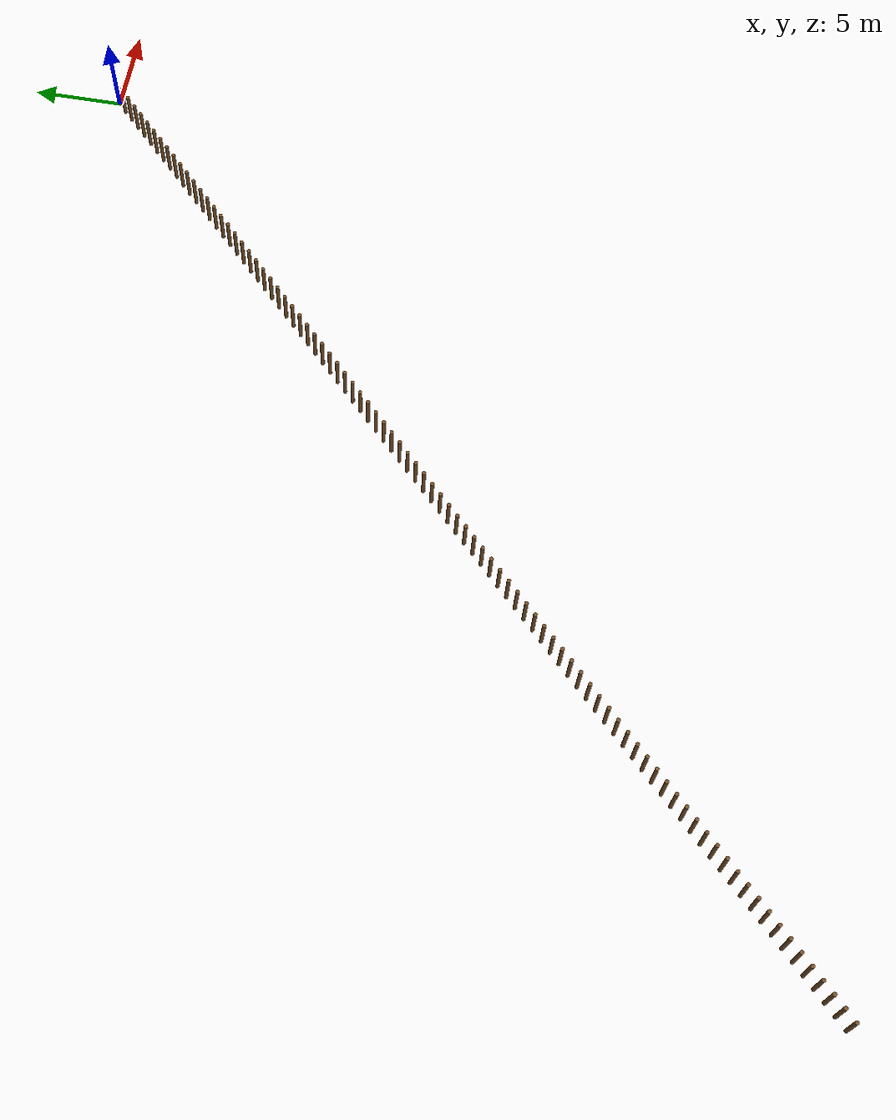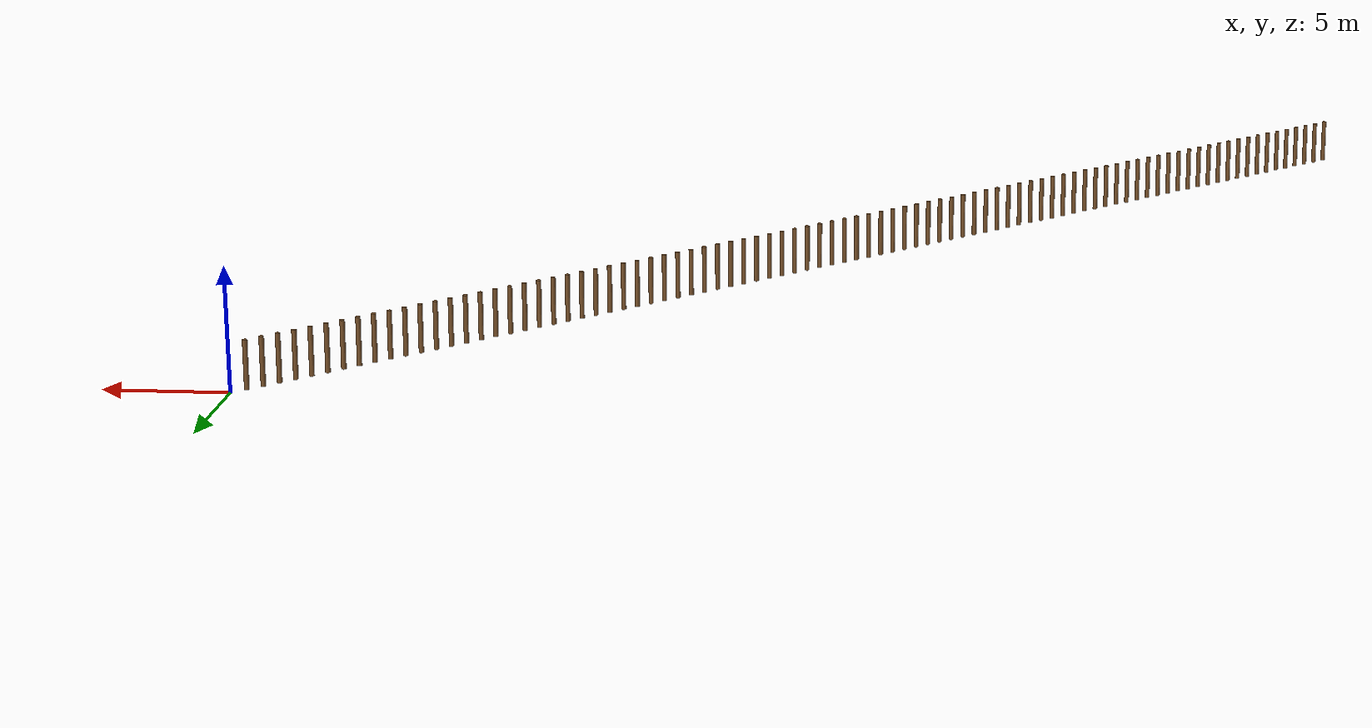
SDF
<?xml version="1.0" ?>
<sdf version="1.6">
  <model name="greek_row">
    <static>true</static>

    <include>
      <name>POLE_A0</name>
      <pose> 0 0 1 0 0 0 </pose>
      <uri>model://pole</uri>
    </include>
    <include>
      <name>POLE_A1</name>
      <pose> -0.512 -0.501 1 0 0 0 </pose>
      <uri>model://pole</uri>
    </include>
    <include>
      <name>POLE_A2</name>
      <pose> -1.025 -1.002 1 0 0 0 </pose>
      <uri>model://pole</uri>
    </include>
    <include>
      <name>POLE_A3</name>
      <pose> -1.537 -1.503 1 0 0 0 </pose>
      <uri>model://pole</uri>
    </include>
    <include>
      <name>POLE_A4</name>
      <pose> -2.05 -2.004 1 0 0 0 </pose>
      <uri>model://pole</uri>
    </include>
    <include>
      <name>POLE_A5</name>
      <pose> -2.562 -2.505 1 0 0 0 </pose>
      <uri>model://pole</uri>
    </include>
    <include>
      <name>POLE_A6</name>
      <pose> -3.074 -3.006 1 0 0 0 </pose>
      <uri>model://pole</uri>
    </include>
    <include>
      <name>POLE_A7</name>
      <pose> -3.587 -3.507 1 0 0 0 </pose>
      <uri>model://pole</uri>
    </include>
    <include>
      <name>POLE_A8</name>
      <pose> -4.099 -4.008 1 0 0 0 </pose>
      <uri>model://pole</uri>
    </include>
    <include>
      <name>POLE_A9</name>
      <pose> -4.611 -4.509 1 0 0 0 </pose>
      <uri>model://pole</uri>
    </include>
    <include>
      <name>POLE_A10</name>
      <pose> -5.124 -5.01 1 0 0 0 </pose>
      <uri>model://pole</uri>
    </include>
    <include>
      <name>POLE_A11</name>
      <pose> -5.636 -5.511 1 0 0 0 </pose>
      <uri>model://pole</uri>
    </include>
    <include>
      <name>POLE_A12</name>
      <pose> -6.148 -6.012 1 0 0 0 </pose>
      <uri>model://pole</uri>
    </include>
    <include>
      <name>POLE_A13</name>
      <pose> -6.661 -6.513 1 0 0 0 </pose>
      <uri>model://pole</uri>
    </include>
    <include>
      <name>POLE_A14</name>
      <pose> -7.173 -7.014 1 0 0 0 </pose>
      <uri>model://pole</uri>
    </include>
    <include>
      <name>POLE_A15</name>
      <pose> -7.685 -7.515 1 0 0 0 </pose>
      <uri>model://pole</uri>
    </include>
    <include>
      <name>POLE_A16</name>
      <pose> -8.198 -8.016 1 0 0 0 </pose>
      <uri>model://pole</uri>
    </include>
    <include>
      <name>POLE_A17</name>
      <pose> -8.71 -8.517 1 0 0 0 </pose>
      <uri>model://pole</uri>
    </include>
    <include>
      <name>POLE_A18</name>
      <pose> -9.222 -9.018 1 0 0 0 </pose>
      <uri>model://pole</uri>
    </include>
    <include>
      <name>POLE_A19</name>
      <pose> -9.735 -9.519 1 0 0 0 </pose>
      <uri>model://pole</uri>
    </include>
    <include>
      <name>POLE_A20</name>
      <pose> -10.247 -10.02 1 0 0 0 </pose>
      <uri>model://pole</uri>
    </include>
    <include>
      <name>POLE_A21</name>
      <pose> -10.759 -10.521 1 0 0 0 </pose>
      <uri>model://pole</uri>
    </include>
    <include>
      <name>POLE_A22</name>
      <pose> -11.272 -11.022 1 0 0 0 </pose>
      <uri>model://pole</uri>
    </include>
    <include>
      <name>POLE_A23</name>
      <pose> -11.784 -11.523 1 0 0 0 </pose>
      <uri>model://pole</uri>
    </include>
    <include>
      <name>POLE_A24</name>
      <pose> -12.296 -12.024 1 0 0 0 </pose>
      <uri>model://pole</uri>
    </include>
    <include>
      <name>POLE_A25</name>
      <pose> -12.809 -12.525 1 0 0 0 </pose>
      <uri>model://pole</uri>
    </include>
    <include>
      <name>POLE_A26</name>
      <pose> -13.321 -13.026 1 0 0 0 </pose>
      <uri>model://pole</uri>
    </include>
    <include>
      <name>POLE_A27</name>
      <pose> -13.833 -13.527 1 0 0 0 </pose>
      <uri>model://pole</uri>
    </include>
    <include>
      <name>POLE_A28</name>
      <pose> -14.346 -14.028 1 0 0 0 </pose>
      <uri>model://pole</uri>
    </include>
    <include>
      <name>POLE_A29</name>
      <pose> -14.858 -14.529 1 0 0 0 </pose>
      <uri>model://pole</uri>
    </include>

    <include>
      <name>POLE_B0</name>
      <pose> -15.37 -15.03 1 0 0 0 </pose>
      <uri>model://pole</uri>
    </include>
    <include>
      <name>POLE_B1</name>
      <pose> -15.883 -15.531 1 0 0 0 </pose>
      <uri>model://pole</uri>
    </include>
    <include>
      <name>POLE_B2</name>
      <pose> -16.395 -16.032 1 0 0 0 </pose>
      <uri>model://pole</uri>
    </include>
    <include>
      <name>POLE_B3</name>
      <pose> -16.907 -16.533 1 0 0 0 </pose>
      <uri>model://pole</uri>
    </include>
    <include>
      <name>POLE_B4</name>
      <pose> -17.42 -17.034 1 0 0 0 </pose>
      <uri>model://pole</uri>
    </include>
    <include>
      <name>POLE_B5</name>
      <pose> -17.932 -17.535 1 0 0 0 </pose>
      <uri>model://pole</uri>
    </include>
    <include>
      <name>POLE_B6</name>
      <pose> -18.444 -18.036 1 0 0 0 </pose>
      <uri>model://pole</uri>
    </include>
    <include>
      <name>POLE_B7</name>
      <pose> -18.957 -18.537 1 0 0 0 </pose>
      <uri>model://pole</uri>
    </include>
    <include>
      <name>POLE_B8</name>
      <pose> -19.469 -19.038 1 0 0 0 </pose>
      <uri>model://pole</uri>
    </include>
    <include>
      <name>POLE_B9</name>
      <pose> -19.981 -19.539 1 0 0 0 </pose>
      <uri>model://pole</uri>
    </include>
    <include>
      <name>POLE_B10</name>
      <pose> -20.494 -20.04 1 0 0 0 </pose>
      <uri>model://pole</uri>
    </include>
    <include>
      <name>POLE_B11</name>
      <pose> -21.006 -20.541 1 0 0 0 </pose>
      <uri>model://pole</uri>
    </include>
    <include>
      <name>POLE_B12</name>
      <pose> -21.518 -21.042 1 0 0 0 </pose>
      <uri>model://pole</uri>
    </include>
    <include>
      <name>POLE_B13</name>
      <pose> -22.031 -21.543 1 0 0 0 </pose>
      <uri>model://pole</uri>
    </include>
    <include>
      <name>POLE_B14</name>
      <pose> -22.543 -22.044 1 0 0 0 </pose>
      <uri>model://pole</uri>
    </include>
    <include>
      <name>POLE_B15</name>
      <pose> -23.055 -22.545 1 0 0 0 </pose>
      <uri>model://pole</uri>
    </include>
    <include>
      <name>POLE_B16</name>
      <pose> -23.568 -23.046 1 0 0 0 </pose>
      <uri>model://pole</uri>
    </include>
    <include>
      <name>POLE_B17</name>
      <pose> -24.08 -23.547 1 0 0 0 </pose>
      <uri>model://pole</uri>
    </include>
    <include>
      <name>POLE_B18</name>
      <pose> -24.592 -24.048 1 0 0 0 </pose>
      <uri>model://pole</uri>
    </include>
    <include>
      <name>POLE_B19</name>
      <pose> -25.105 -24.549 1 0 0 0 </pose>
      <uri>model://pole</uri>
    </include>
    <include>
      <name>POLE_B20</name>
      <pose> -25.617 -25.05 1 0 0 0 </pose>
      <uri>model://pole</uri>
    </include>
    <include>
      <name>POLE_B21</name>
      <pose> -26.129 -25.551 1 0 0 0 </pose>
      <uri>model://pole</uri>
    </include>
    <include>
      <name>POLE_B22</name>
      <pose> -26.642 -26.052 1 0 0 0 </pose>
      <uri>model://pole</uri>
    </include>
    <include>
      <name>POLE_B23</name>
      <pose> -27.154 -26.553 1 0 0 0 </pose>
      <uri>model://pole</uri>
    </include>
    <include>
      <name>POLE_B24</name>
      <pose> -27.666 -27.054 1 0 0 0 </pose>
      <uri>model://pole</uri>
    </include>
    <include>
      <name>POLE_B25</name>
      <pose> -28.179 -27.555 1 0 0 0 </pose>
      <uri>model://pole</uri>
    </include>
    <include>
      <name>POLE_B26</name>
      <pose> -28.691 -28.056 1 0 0 0 </pose>
      <uri>model://pole</uri>
    </include>
    <include>
      <name>POLE_B27</name>
      <pose> -29.203 -28.557 1 0 0 0 </pose>
      <uri>model://pole</uri>
    </include>
    <include>
      <name>POLE_B28</name>
      <pose> -29.716 -29.058 1 0 0 0 </pose>
      <uri>model://pole</uri>
    </include>
    <include>
      <name>POLE_B29</name>
      <pose> -30.228 -29.559 1 0 0 0 </pose>
      <uri>model://pole</uri>
    </include>

    <include>
      <name>POLE_C0</name>
      <pose> -30.74 -30.06 1 0 0 0 </pose>
      <uri>model://pole</uri>
    </include>
    <include>
      <name>POLE_C1</name>
      <pose> -31.253 -30.561 1 0 0 0 </pose>
      <uri>model://pole</uri>
    </include>
    <include>
      <name>POLE_C2</name>
      <pose> -31.765 -31.062 1 0 0 0 </pose>
      <uri>model://pole</uri>
    </include>
    <include>
      <name>POLE_C3</name>
      <pose> -32.277 -31.563 1 0 0 0 </pose>
      <uri>model://pole</uri>
    </include>
    <include>
      <name>POLE_C4</name>
      <pose> -32.79 -32.064 1 0 0 0 </pose>
      <uri>model://pole</uri>
    </include>
    <include>
      <name>POLE_C5</name>
      <pose> -33.302 -32.565 1 0 0 0 </pose>
      <uri>model://pole</uri>
    </include>
    <include>
      <name>POLE_C6</name>
      <pose> -33.814 -33.066 1 0 0 0 </pose>
      <uri>model://pole</uri>
    </include>
    <include>
      <name>POLE_C7</name>
      <pose> -34.327 -33.567 1 0 0 0 </pose>
      <uri>model://pole</uri>
    </include>
    <include>
      <name>POLE_C8</name>
      <pose> -34.839 -34.068 1 0 0 0 </pose>
      <uri>model://pole</uri>
    </include>
    <include>
      <name>POLE_C9</name>
      <pose> -35.351 -34.569 1 0 0 0 </pose>
      <uri>model://pole</uri>
    </include>
    <include>
      <name>POLE_C10</name>
      <pose> -35.864 -35.07 1 0 0 0 </pose>
      <uri>model://pole</uri>
    </include>
    <include>
      <name>POLE_C11</name>
      <pose> -36.376 -35.571 1 0 0 0 </pose>
      <uri>model://pole</uri>
    </include>
    <include>
      <name>POLE_C12</name>
      <pose> -36.888 -36.072 1 0 0 0 </pose>
      <uri>model://pole</uri>
    </include>
    <include>
      <name>POLE_C13</name>
      <pose> -37.401 -36.573 1 0 0 0 </pose>
      <uri>model://pole</uri>
    </include>
    <include>
      <name>POLE_C14</name>
      <pose> -37.913 -37.074 1 0 0 0 </pose>
      <uri>model://pole</uri>
    </include>
    <include>
      <name>POLE_C15</name>
      <pose> -38.425 -37.575 1 0 0 0 </pose>
      <uri>model://pole</uri>
    </include>
    <include>
      <name>POLE_C16</name>
      <pose> -38.938 -38.076 1 0 0 0 </pose>
      <uri>model://pole</uri>
    </include>
    <include>
      <name>POLE_C17</name>
      <pose> -39.45 -38.577 1 0 0 0 </pose>
      <uri>model://pole</uri>
    </include>
    <include>
      <name>POLE_C18</name>
      <pose> -39.962 -39.078 1 0 0 0 </pose>
      <uri>model://pole</uri>
    </include>
    <include>
      <name>POLE_C19</name>
      <pose> -40.475 -39.579 1 0 0 0 </pose>
      <uri>model://pole</uri>
    </include>
    <include>
      <name>POLE_C20</name>
      <pose> -40.987 -40.08 1 0 0 0 </pose>
      <uri>model://pole</uri>
    </include>
    <include>
      <name>POLE_C21</name>
      <pose> -41.499 -40.581 1 0 0 0 </pose>
      <uri>model://pole</uri>
    </include>
    <include>
      <name>POLE_C22</name>
      <pose> -42.012 -41.082 1 0 0 0 </pose>
      <uri>model://pole</uri>
    </include>
    <include>
      <name>POLE_C23</name>
      <pose> -42.524 -41.583 1 0 0 0 </pose>
      <uri>model://pole</uri>
    </include>
    <include>
      <name>POLE_C24</name>
      <pose> -43.036 -42.084 1 0 0 0 </pose>
      <uri>model://pole</uri>
    </include>
    <include>
      <name>POLE_C25</name>
      <pose> -43.549 -42.585 1 0 0 0 </pose>
      <uri>model://pole</uri>
    </include>
    <include>
      <name>POLE_C26</name>
      <pose> -44.061 -43.086 1 0 0 0 </pose>
      <uri>model://pole</uri>
    </include>
    <include>
      <name>POLE_C27</name>
      <pose> -44.573 -43.587 1 0 0 0 </pose>
      <uri>model://pole</uri>
    </include>
    <include>
      <name>POLE_C28</name>
      <pose> -45.086 -44.088 1 0 0 0 </pose>
      <uri>model://pole</uri>
    </include>

  </model>
</sdf>

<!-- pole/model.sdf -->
<sdf version="1.6">
  <model name="pole">
    <static>true</static>
    <link name="link">
      <visual name="visual">
        <geometry>
          <cylinder>
            <radius>0.1</radius>
            <length>2.0</length>
          </cylinder>
        </geometry>
        <material>
          <script>
            <uri>file://media/materials/scripts/gazebo.material</uri>
            <name>Gazebo/Trunk</name>
          </script>
        </material>
      </visual>
      <collision name="collision">
        <geometry>
          <cylinder>
            <radius>0.1</radius>
            <length>2.0</length>
          </cylinder>
        </geometry>
      </collision>
    </link>
  </model>
</sdf>
